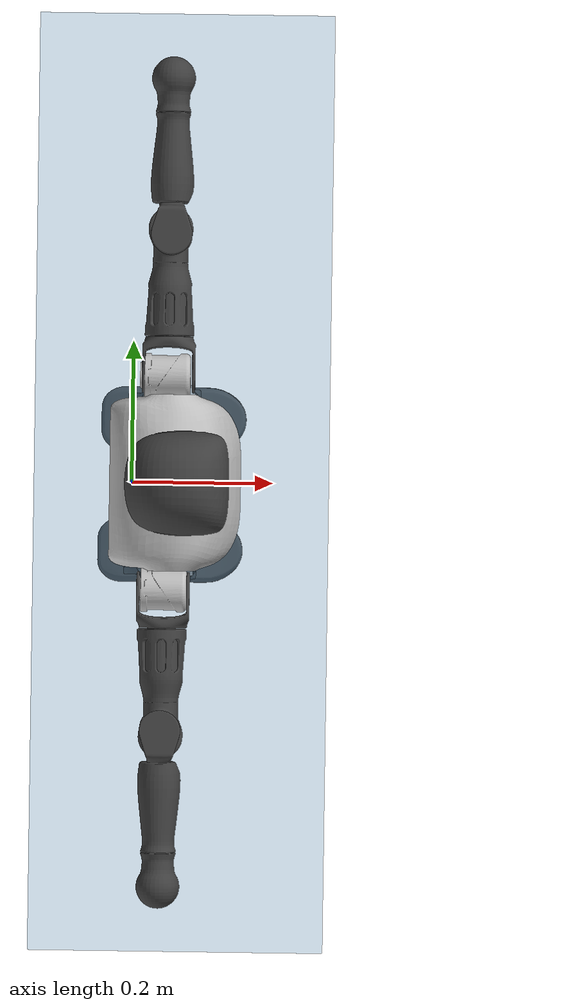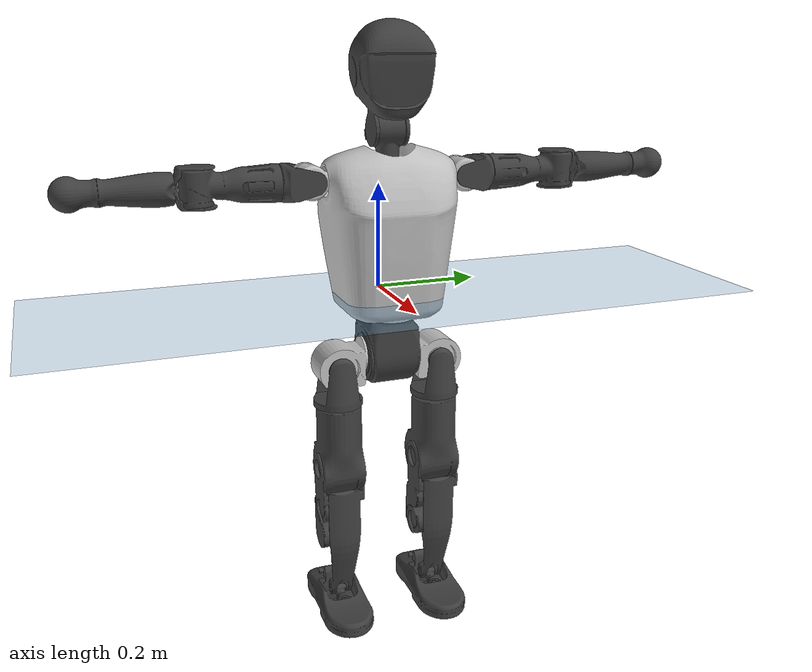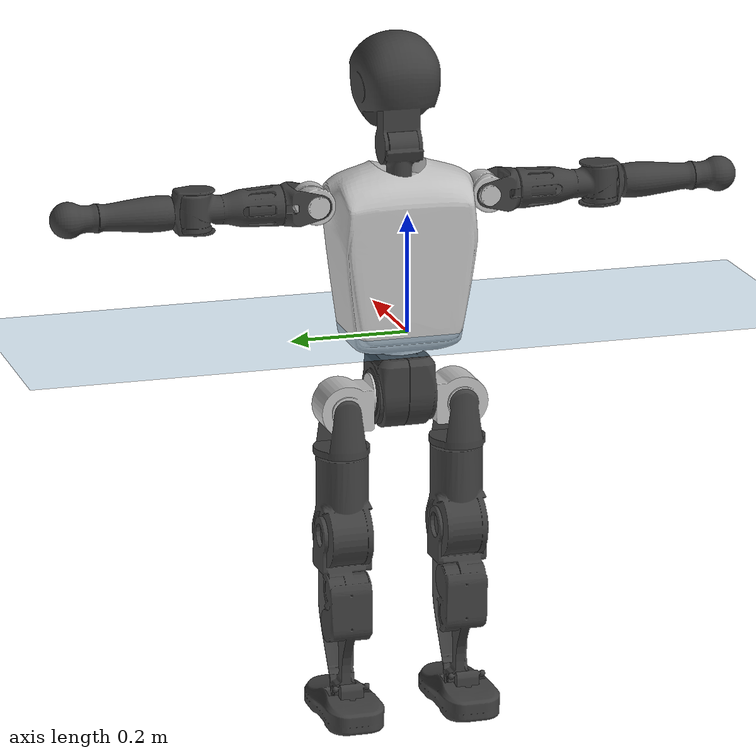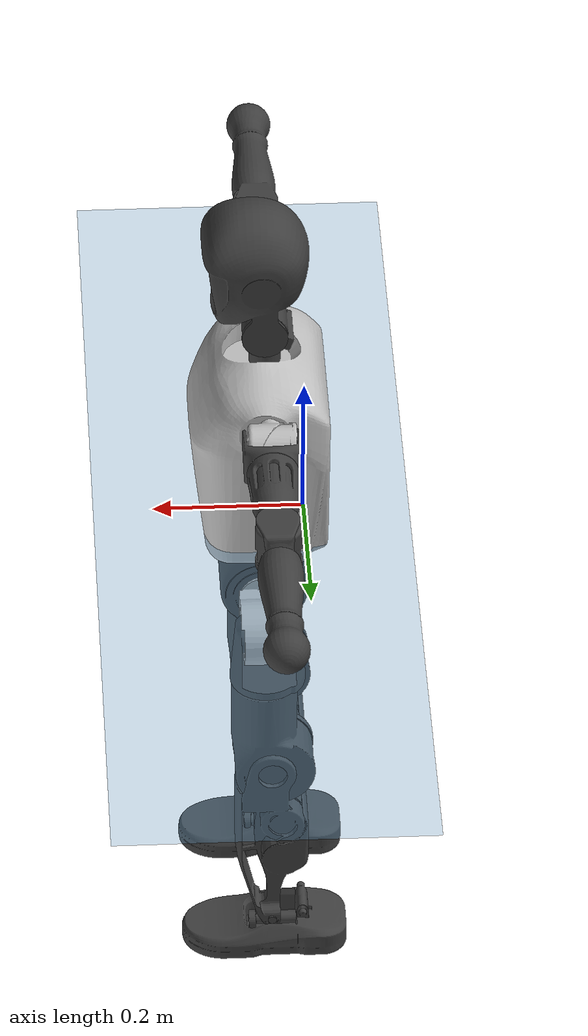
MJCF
<mujoco model="T1">
  <compiler angle="radian" assetdir="assets" balanceinertia="true" inertiafromgeom="false"/>

  <option timestep="0.005" density="1.2" viscosity="2e-05"/>

  <size nkey="1"/>

  <visual>
    <quality shadowsize="8192"/>
    <map shadowclip="0.5"/>
  </visual>

  <default>
    <default class="/">
      <joint armature="0.01" damping="0.01" frictionloss="0.1"/>
      <geom contype="0" conaffinity="0" group="1" solref="-1000 -80"/>
      <site size="0.01 0.005 0.005" group="5"/>
      <general forcelimited="true" biastype="affine" gainprm="25" biasprm="0 -25 -0.6"/>
      <default class="t1">
        <geom rgba="0.25 0.25 0.25 1"/>
        <default class="visual">
          <geom type="mesh" group="2"/>
        </default>
        <default class="collision">
          <geom group="3"/>
        </default>
        <default class="foot">
          <geom size="0.1115 0.05 0.015" type="box" condim="6" group="4" priority="1" solimp="0.015 1 0.015"/>
        </default>
        <default class="reward_collision_sphere">
          <geom group="5" rgba="1 0 0 1"/>
        </default>
      </default>
    </default>
  </default>

  <asset>
    <texture type="skybox" colorspace="auto" name="//unnamed_texture_0" builtin="gradient" rgb1="0.95 0.95 0.95" rgb2="0.95 0.95 0.95" width="100" height="600"/>
    <texture type="2d" colorspace="auto" name="texplane" builtin="checker" rgb1="0.345 0.575 0.748" rgb2="0.345 0.575 0.748" markrgb="1 1 1" width="512" height="512"/>
    <material name="MatPlane" class="/" texture="texplane" texuniform="true" texrepeat="2 2" specular="0.9"/>
    <mesh name="Trunk" class="/" file="Trunk.stl"/>
    <mesh name="H1" class="/" file="H1.stl"/>
    <mesh name="H2" class="/" file="H2.stl"/>
    <mesh name="AL1" class="/" file="AL1.stl"/>
    <mesh name="AL2" class="/" file="AL2.stl"/>
    <mesh name="AL3" class="/" file="AL3.stl"/>
    <mesh name="left_hand_link" class="/" file="left_hand_link.stl"/>
    <mesh name="AR1" class="/" file="AR1.stl"/>
    <mesh name="AR2" class="/" file="AR2.stl"/>
    <mesh name="AR3" class="/" file="AR3.stl"/>
    <mesh name="right_hand_link" class="/" file="right_hand_link.stl"/>
    <mesh name="Waist" class="/" file="Waist.stl"/>
    <mesh name="Hip_Pitch_Left" class="/" file="Hip_Pitch_Left.stl"/>
    <mesh name="Hip_Roll_Left" class="/" file="Hip_Roll_Left.stl"/>
    <mesh name="Hip_Yaw_Left" class="/" file="Hip_Yaw_Left.stl"/>
    <mesh name="Shank_Left" class="/" file="Shank_Left.stl"/>
    <mesh name="Ankle_Cross_Left" class="/" file="Ankle_Cross_Left.stl"/>
    <mesh name="left_foot_link" class="/" file="left_foot_link.stl"/>
    <mesh name="Hip_Pitch_Right" class="/" file="Hip_Pitch_Right.stl"/>
    <mesh name="Hip_Roll_Right" class="/" file="Hip_Roll_Right.stl"/>
    <mesh name="Hip_Yaw_Right" class="/" file="Hip_Yaw_Right.stl"/>
    <mesh name="Shank_Right" class="/" file="Shank_Right.stl"/>
    <mesh name="Ankle_Cross_Right" class="/" file="Ankle_Cross_Right.stl"/>
    <mesh name="right_foot_link" class="/" file="right_foot_link.stl"/>
  </asset>

  <worldbody>
    <geom name="floor" class="/" size="100 100 0.125" type="plane" group="0" material="MatPlane"/>
    <light name="toplight_shadow" class="/" pos="0 0 5" dir="0.0990148 0.0990148 -0.990148" type="directional" ambient="0.04 0.04 0.04" diffuse="0.55 0.55 0.55" specular="0.12 0.12 0.12"/>
    <light name="toplight_fill" class="/" pos="0 0 5" dir="0.0990148 0.0990148 -0.990148" type="directional" castshadow="false" ambient="0.04 0.04 0.04" diffuse="0.3 0.3 0.3" specular="0.08 0.08 0.08"/>
    <body name="trunk" childclass="t1" pos="-0.000223482 -0.000499017 -0.000648821" quat="1 0.000156446 5.19361e-05 -0.000279065">
      <inertial pos="0.0470586 -0.000739546 0.104701" quat="0.999961 -0.00020122 -0.00887612 -0.000301172" mass="9.61571" diaginertia="0.039633 0.0585209 0.056419"/>
      <joint name="//unnamed_joint_0" type="free" armature="0" damping="0" frictionloss="0"/>
      <geom name="//unnamed_geom_1" class="visual" rgba="0.76 0.76 0.76 1" mesh="Trunk"/>
      <geom name="//unnamed_geom_2" class="collision" size="0.069874 0.0931654 0.139748" pos="0.0507683 0 0.120231" type="box"/>
      <geom name="//unnamed_geom_3" class="reward_collision_sphere" size="0.10714" pos="0.0507683 0 0.100192"/>
      <geom name="//unnamed_geom_4" class="reward_collision_sphere" size="0.0139748" pos="0.0507683 0.0804864 0"/>
      <geom name="//unnamed_geom_5" class="reward_collision_sphere" size="0.0139748" pos="0.0507683 -0.0804864 0"/>
      <geom name="//unnamed_geom_6" class="reward_collision_sphere" size="0.0139748" pos="0.0507683 0.101318 0.180346"/>
      <geom name="//unnamed_geom_7" class="reward_collision_sphere" size="0.0139748" pos="0.0507683 -0.101318 0.180346"/>
      <site name="imu" pos="-0.005164 0.00593961 -0.00469992" size="0.00931654"/>
      <camera name="track" pos="0 -1.8938 0" quat="0.707107 0.707107 0 0" mode="trackcom"/>
      <camera name="ego_camera" pos="0.103229 0 0.420808" quat="-0.5 -0.5 0.5 0.5"/>
      <body name="H1" pos="0.0523959 -0.000510874 0.243775" quat="1 -0.000213078 -0.000367277 0.000204213">
        <inertial pos="-0.00102648 -0.00154519 0.0570486" quat="0.763281 -0.0148475 -9.26374e-05 0.645896" mass="0.367111" diaginertia="0.000105528 0.000170395 0.000152043"/>
        <joint name="AAHead_yaw" pos="0 0 0" axis="-0.00123596 -0.00423383 0.99999" stiffness="0.0024225" range="-1.56041 1.57639" armature="0.00982908" damping="0.00409065" frictionloss="0.0936757"/>
        <geom name="//unnamed_geom_8" class="visual" mesh="H1"/>
        <body name="H2" pos="0.000950825 0.000604168 0.0618567" quat="1 0.000196251 -0.000191117 -0.000430381">
          <inertial pos="0.00625837 0.00108508 0.0990184" quat="0.988393 0.108143 -0.0732902 -0.0775466" mass="0.511062" diaginertia="0.000881599 0.00147372 0.00172397"/>
          <joint name="Head_pitch" pos="0 0 0" axis="0.00132523 -0.999998 0.00140211" range="-1.23138 0.366967" armature="0.00882584" damping="0.00959566" frictionloss="0.0910469"/>
          <geom name="//unnamed_geom_9" class="visual" mesh="H2"/>
          <geom name="//unnamed_geom_10" class="collision" size="0.0745323" pos="0.00846138 0 0.110212"/>
          <geom name="//unnamed_geom_11" class="reward_collision_sphere" size="0.0838488" pos="0.0169228 0 0.100192"/>
        </body>
      </body>
      <body name="AL1" pos="0.0491386 0.100939 0.219031" quat="1 8.94623e-06 0.000401275 2.51354e-05">
        <inertial pos="-0.000798913 0.0423772 6.73676e-05" quat="0.502085 0.497074 -0.504528 0.496265" mass="0.428625" diaginertia="0.000587212 0.0009934 0.000298475"/>
        <joint name="Left_Shoulder_Pitch" pos="0 0 0" axis="0.00380656 0.999993 0.000277657" range="-3.32619 1.21589" armature="0.00947442" damping="0.00615465" frictionloss="0.0967954"/>
        <geom name="//unnamed_geom_12" class="visual" rgba="0.76 0.76 0.76 1" mesh="AL1"/>
        <body name="AL2" pos="0.00176627 0.0443419 7.1196e-05" quat="1 2.73422e-06 7.57463e-05 4.95994e-05">
          <inertial pos="0.00366559 0.0356503 0.000187027" quat="0.489068 0.511001 -0.487859 0.51155" mass="0.129104" diaginertia="0.000172185 0.000258713 0.000174806"/>
          <joint name="Left_Shoulder_Roll" pos="0 0 0" axis="-0.999995 0.00135631 -0.00280843" range="-1.55402 1.75894" armature="0.00888508" damping="0.00856086" frictionloss="0.0937082"/>
          <geom name="//unnamed_geom_13" class="visual" mesh="AL2"/>
          <body name="AL3" pos="0.000491825 0.0572315 -4.57533e-05" quat="1 0.000174552 9.42973e-05 7.68691e-05">
            <inertial pos="-0.000960653 0.0808524 -0.0003069" quat="0.703265 0.710926 0.000459547 -0.00176354" mass="0.824268" diaginertia="0.00564738 0.00970762 0.00061998"/>
            <joint name="Left_Elbow_Pitch" pos="0 0 0" axis="-0.000539303 -0.999976 -0.00692615" range="-2.25158 2.26728" armature="0.00859181" damping="0.00208996" frictionloss="0.0953602"/>
            <geom name="//unnamed_geom_14" class="visual" mesh="AL3"/>
            <geom name="//unnamed_geom_15" class="collision" size="0.0279496 0.069874" pos="0 0.0473449 0" quat="0.707105 0.707108 0 0" type="cylinder"/>
            <geom name="//unnamed_geom_16" class="reward_collision_sphere" size="0.0335395"/>
            <body name="left_hand_link" pos="0.00100154 0.139313 0.000189046" quat="1 0.000133684 0.0003936 -0.000247961">
              <inertial pos="0.000161609 0.104362 -0.000521335" quat="0.707739 0.706474 2.67995e-05 -0.000239258" mass="0.262072" diaginertia="0.00354667 0.00621964 0.000213356"/>
              <joint name="Left_Elbow_Yaw" pos="0 0 0" axis="-0.00716089 -0.00148613 0.999973" stiffness="0.00224329" range="-2.42596 -0.00114765" armature="0.00978463" damping="0.0121968" frictionloss="0.0973241"/>
              <geom name="//unnamed_geom_17" class="visual" mesh="left_hand_link"/>
              <geom name="//unnamed_geom_18" class="collision" size="0.0279496 0.0815197" pos="0 0.123097 0" quat="0.707105 0.707108 0 0" type="cylinder"/>
              <geom name="//unnamed_geom_19" class="reward_collision_sphere" size="0.0465827"/>
              <geom name="//unnamed_geom_20" class="reward_collision_sphere" size="0.0326079" pos="0 0.104159 0"/>
              <geom name="//unnamed_geom_21" class="reward_collision_sphere" size="0.0326079" pos="0 0.203583 0"/>
            </body>
          </body>
        </body>
      </body>
      <body name="AR1" pos="0.0479728 -0.100771 0.218877" quat="1 -0.000271271 0.00049335 0.000202892">
        <inertial pos="-0.00194148 -0.043289 -0.000534023" quat="0.50124 0.501107 -0.505491 0.492066" mass="0.42173" diaginertia="0.000597605 0.000992348 0.000298259"/>
        <joint name="Right_Shoulder_Pitch" pos="0 0 0" axis="0.000666197 -0.999998 0.00180892" stiffness="0.000121245" range="-1.22498 3.30653" armature="0.00923465" damping="0.00473713" frictionloss="0.0954833"/>
        <geom name="//unnamed_geom_22" class="visual" rgba="0.76 0.76 0.76 1" mesh="AR1"/>
        <body name="AR2" pos="-0.000614791 -0.0433362 0.000147654" quat="1 0.000259876 4.14783e-05 6.6053e-05">
          <inertial pos="0.002578 -0.0354185 -0.000535091" quat="0.511503 0.488108 -0.512139 0.487677" mass="0.129453" diaginertia="0.000174131 0.000264946 0.000176401"/>
          <joint name="Right_Shoulder_Roll" pos="0 0 0" axis="-0.999994 -0.0034508 -0.000760963" stiffness="0.00329415" range="-1.7587 1.59573" armature="0.00942718" damping="0.00417619" frictionloss="0.0955969"/>
          <geom name="//unnamed_geom_23" class="visual" mesh="AR2"/>
          <body name="AR3" pos="-0.000745619 -0.0579446 0.000275916" quat="1 -8.30491e-05 -2.80221e-05 -6.08754e-05">
            <inertial pos="-0.000392276 -0.0818301 0.000194829" quat="0.706644 0.707569 -0.000440099 0.000975627" mass="0.82849" diaginertia="0.0055287 0.00981326 0.00062737"/>
            <joint name="Right_Elbow_Pitch" pos="0 0 0" axis="0.00425024 0.999991 -0.000472332" range="-2.28834 2.2754" armature="0.00936809" damping="0.00783831" frictionloss="0.0931664"/>
            <geom name="//unnamed_geom_24" class="visual" mesh="AR3"/>
            <geom name="//unnamed_geom_25" class="collision" size="0.0279496 0.069874" pos="0 -0.0473449 0" quat="0.707105 0.707108 0 0" type="cylinder"/>
            <geom name="//unnamed_geom_26" class="reward_collision_sphere" size="0.0335395"/>
            <body name="right_hand_link" pos="-0.000956216 -0.139307 -0.000738304" quat="1 4.13303e-05 -0.000222089 0.000292584">
              <inertial pos="4.85634e-05 -0.104104 0.00122833" quat="0.706633 0.707579 -0.000552175 0.000845791" mass="0.266588" diaginertia="0.00354545 0.00619232 0.000218485"/>
              <joint name="Right_Elbow_Yaw" pos="0 0 0" axis="0.00174968 0.00357883 0.999992" range="0.00956949 2.43397" armature="0.0094385" damping="0.0116478" frictionloss="0.0902214"/>
              <geom name="//unnamed_geom_27" class="visual" mesh="right_hand_link"/>
              <geom name="//unnamed_geom_28" class="collision" size="0.0279496 0.0815197" pos="0 -0.123097 0" quat="0.707105 0.707108 0 0" type="cylinder"/>
              <geom name="//unnamed_geom_29" class="reward_collision_sphere" size="0.0465827"/>
              <geom name="//unnamed_geom_30" class="reward_collision_sphere" size="0.0326079" pos="0 -0.104159 0"/>
              <geom name="//unnamed_geom_31" class="reward_collision_sphere" size="0.0326079" pos="0 -0.203583 0"/>
            </body>
          </body>
        </body>
      </body>
      <body name="Waist" pos="0.0535436 -0.00189031 -0.115578" quat="1 -4.11672e-05 -9.50299e-05 4.4248e-05">
        <inertial pos="0.000159781 -0.00118023 0.0073674" quat="0.983807 0.000519274 -0.179226 0.00150772" mass="2.10631" diaginertia="0.0023032 0.00405749 0.00476089"/>
        <joint name="Waist" pos="0 0 0" axis="0.00381234 0.00444822 0.999983" range="-1.58019 1.57808" armature="0.00975793" damping="0.0180572" frictionloss="0.0930777"/>
        <geom name="//unnamed_geom_32" class="visual" mesh="Waist"/>
        <body name="Hip_Pitch_Left" pos="-0.000420092 0.100138 -0.00059875" quat="0.999999 -0.000854032 9.82162e-05 -0.000662226">
          <inertial pos="0.00120427 -0.00617535 -0.0180294" quat="0.974946 0.22203 0.0133572 0.00206964" mass="0.803407" diaginertia="0.00077158 0.00109287 0.00126316"/>
          <joint name="Left_Hip_Pitch" pos="0 0 0" axis="-0.000913568 0.999993 0.00361504" stiffness="0.00139931" range="-1.79751 1.56522" armature="0.00941094" damping="0.0077542" frictionloss="0.0989683"/>
          <geom name="//unnamed_geom_33" class="visual" rgba="0.76 0.76 0.76 1" mesh="Hip_Pitch_Left"/>
          <body name="Hip_Roll_Left" pos="0.00163248 0.000917152 -0.0219614" quat="1 7.33973e-05 0.000520945 -0.000416176">
            <inertial pos="0.000563026 0.00105403 -0.0548028" quat="0.707715 -0.00488949 -0.00552067 0.706459" mass="0.313794" diaginertia="0.00075055 0.00115423 0.000519609"/>
            <joint name="Left_Hip_Roll" pos="0 0 0" axis="-0.999999 -0.00102428 0.000501175" range="-1.56669 0.196052" armature="0.00909042" damping="0.0108713" frictionloss="0.0929194"/>
            <geom name="//unnamed_geom_34" class="visual" mesh="Hip_Roll_Left"/>
            <geom name="//unnamed_geom_35" class="reward_collision_sphere" size="0.051241"/>
            <body name="Hip_Yaw_Left" pos="0.00213097 -0.00147722 -0.0833935" quat="1 4.95603e-05 -6.58419e-06 4.28945e-05">
              <inertial pos="-0.00626664 0.00112013 -0.0886332" quat="0.697122 -0.0334958 -0.0309819 0.715499" mass="1.73292" diaginertia="0.0110365 0.0190456 0.00260317"/>
              <joint name="Left_Hip_Yaw" pos="0 0 0" axis="-3.74058e-05 0.00241114 -0.999997" range="-1.00433 1.01237" armature="0.00934227" damping="0.0141682" frictionloss="0.0899694"/>
              <geom name="//unnamed_geom_36" class="visual" mesh="Hip_Yaw_Left"/>
              <geom name="//unnamed_geom_37" class="collision" size="0.0465827 0.0745323" type="cylinder"/>
              <body name="Shank_Left" pos="-0.00995605 0.000540943 -0.133815" quat="1 8.19761e-05 5.39067e-05 -8.46315e-05">
                <inertial pos="-0.00489256 0.00141379 -0.125446" quat="0.997412 0.00332802 -0.0230477 0.0680239" mass="1.38717" diaginertia="0.0150257 0.0259015 0.00186898"/>
                <joint name="Left_Knee_Pitch" pos="0 0 0" axis="-0.00142559 0.999997 0.00199024" range="0.00213667 2.33327" armature="0.00918932" damping="0.0127494" frictionloss="0.093543"/>
                <geom name="//unnamed_geom_38" class="visual" mesh="Shank_Left"/>
                <geom name="//unnamed_geom_39" class="collision" size="0.0465827 0.069874" pos="0 0 -0.120231" type="cylinder"/>
                <geom name="//unnamed_geom_40" class="reward_collision_sphere" size="0.0605575"/>
                <body name="Ankle_Cross_Left" pos="-0.00108161 0.00010276 -0.280943" quat="1 0.000370408 -8.40064e-05 -0.00018596">
                  <inertial pos="-0.00335031 -8.25335e-05 -0.00840949" quat="0.442042 0.55164 0.551042 0.443448" mass="0.0596874" diaginertia="1.25657e-05 1.95497e-05 1.14426e-05"/>
                  <joint name="Left_Ankle_Pitch" pos="0 0 0" axis="0.000193903 1 0.000537555" range="-0.894865 0.370486" armature="0.00891391" damping="9.14965e-05" frictionloss="0.0892184"/>
                  <geom name="//unnamed_geom_41" class="visual" mesh="Ankle_Cross_Left"/>
                  <body name="left_foot_link" pos="0.000229438 0.000785569 -0.0129039" quat="1 -0.000268504 0.000462768 0.000386754">
                    <inertial pos="5.7501e-05 0.00017779 -0.00892497" quat="4.84115e-05 0.620664 0.000489019 0.784076" mass="0.567697" diaginertia="0.00120965 0.0018481 0.00230073"/>
                    <joint name="Left_Ankle_Roll" pos="0 0 0" axis="-0.999996 -0.0016469 -0.00247548" range="-0.443242 0.466157" armature="0.00940058" damping="0.00855429" frictionloss="0.101366"/>
                    <geom name="//unnamed_geom_42" class="visual" mesh="left_foot_link"/>
                    <geom name="left_foot" class="foot" size="0.103907 0.0454608 0.0151674" pos="0.00846138 0 -0.0150289"/>
                    <geom name="//unnamed_geom_44" class="reward_collision_sphere" size="0.048446" pos="0.00846138 0 -0.0150289"/>
                    <geom name="//unnamed_geom_45" class="reward_collision_sphere" size="0.0279496" pos="0.0803831 -0.0217787 -0.0150289"/>
                    <geom name="//unnamed_geom_46" class="reward_collision_sphere" size="0.0279496" pos="-0.0592297 -0.0217787 -0.0150289"/>
                    <site name="left_foot" class="foot" pos="0.00846138 0 -0.0150289" size="0.00931654"/>
                  </body>
                </body>
              </body>
            </body>
          </body>
        </body>
        <body name="Hip_Pitch_Right" pos="-0.000284685 -0.100499 0.000156599" quat="1 -9.32847e-05 2.71884e-05 -0.000120139">
          <inertial pos="0.00113532 0.0072476 -0.0170097" quat="0.972198 -0.233791 0.0117201 -0.0059839" mass="0.818626" diaginertia="0.00076966 0.00108039 0.00124709"/>
          <joint name="Right_Hip_Pitch" pos="0 0 0" axis="-0.000999358 -0.999999 -0.000872842" range="-1.57443 1.81765" armature="0.00910913" damping="0.00696396" frictionloss="0.0939131"/>
          <geom name="//unnamed_geom_47" class="visual" rgba="0.76 0.76 0.76 1" mesh="Hip_Pitch_Right"/>
          <body name="Hip_Roll_Right" pos="-0.000440059 -0.00034616 -0.0207905" quat="1 -3.20477e-08 6.22882e-07 -2.21438e-07">
            <inertial pos="0.00106683 -0.00114405 -0.053846" quat="0.707433 -0.00540664 -0.00722923 0.706723" mass="0.312191" diaginertia="0.000754578 0.00115445 0.000517701"/>
            <joint name="Right_Hip_Roll" pos="0 0 0" axis="-0.999999 -0.000544822 0.0013614" range="-0.211254 1.56515" armature="0.009772" damping="0.00598231" frictionloss="0.0941628"/>
            <geom name="//unnamed_geom_48" class="visual" mesh="Hip_Roll_Right"/>
            <geom name="//unnamed_geom_49" class="reward_collision_sphere" size="0.051241"/>
            <body name="Hip_Yaw_Right" pos="-0.000105576 0.00149182 -0.0823816" quat="1 -1.02779e-05 -4.90163e-06 2.41002e-06">
              <inertial pos="-0.00532174 -0.000173063 -0.0909278" quat="0.714341 -0.0316205 -0.0336379 0.698273" mass="1.76943" diaginertia="0.0111843 0.0194801 0.00264626"/>
              <joint name="Right_Hip_Yaw" pos="0 0 0" axis="-0.00336145 0.00286719 -0.99999" range="-0.995556 1.02156" armature="0.00938027" damping="0.0128143" frictionloss="0.0928847"/>
              <geom name="//unnamed_geom_50" class="visual" mesh="Hip_Yaw_Right"/>
              <geom name="//unnamed_geom_51" class="collision" size="0.0465827 0.0745323" type="cylinder"/>
              <body name="Shank_Right" pos="-0.0122653 -0.000581077 -0.135001" quat="1 8.88047e-05 6.54669e-06 1.91927e-05">
                <inertial pos="-0.00361086 -0.000284314 -0.121958" quat="0.999288 -0.00106593 -0.0233377 -0.029633" mass="1.45353" diaginertia="0.0152267 0.0266928 0.00198315"/>
                <joint name="Right_Knee_Pitch" pos="0 0 0" axis="0.00650831 -0.999957 -0.00656154" range="-2.33584 0.00686736" armature="0.0089696" damping="0.00503198" frictionloss="0.0926365"/>
                <geom name="//unnamed_geom_52" class="visual" mesh="Shank_Right"/>
                <geom name="//unnamed_geom_53" class="collision" size="0.0465827 0.069874" pos="0 0 -0.120231" type="cylinder"/>
                <geom name="//unnamed_geom_54" class="reward_collision_sphere" size="0.0605575"/>
                <body name="Ankle_Cross_Right" pos="0.00148763 -0.00203933 -0.28105" quat="1 0.00031257 -0.000352967 -0.000358781">
                  <inertial pos="-0.00337693 5.49917e-05 -0.00852453" quat="0.444039 0.55096 0.551195 0.442105" mass="0.0587839" diaginertia="1.24715e-05 1.9509e-05 1.15357e-05"/>
                  <joint name="Right_Ankle_Pitch" pos="0 0 0" axis="-0.00222631 -0.999997 0.00141448" range="-0.330752 0.894206" armature="0.00932973" damping="0.00718038" frictionloss="0.0935421"/>
                  <geom name="//unnamed_geom_55" class="visual" mesh="Ankle_Cross_Right"/>
                  <body name="right_foot_link" pos="2.67985e-05 -0.000878146 -0.0114484" quat="1 5.16652e-07 1.62354e-06 8.95336e-07">
                    <inertial pos="0.000153971 -0.000494445 -0.00916554" quat="-0.000249239 0.620703 -0.00183653 0.784044" mass="0.553739" diaginertia="0.00115302 0.00182722 0.00222256"/>
                    <joint name="Right_Ankle_Roll" pos="0 0 0" axis="-0.999999 -0.001029 -0.000236592" range="-0.457184 0.458619" armature="0.00912045" damping="0.00934905" frictionloss="0.0940374"/>
                    <geom name="//unnamed_geom_56" class="visual" mesh="right_foot_link"/>
                    <geom name="right_foot" class="foot" size="0.0991508 0.0448246 0.0139639" pos="0.00846138 0 -0.0150289"/>
                    <geom name="//unnamed_geom_58" class="reward_collision_sphere" size="0.0372661"/>
                    <geom name="//unnamed_geom_59" class="reward_collision_sphere" size="0.0279496" pos="0.00846138 0 -0.0150289"/>
                    <geom name="//unnamed_geom_60" class="reward_collision_sphere" size="0.0279496" pos="0.0803831 0.0217787 -0.0150289"/>
                    <geom name="//unnamed_geom_61" class="reward_collision_sphere" size="0.0279496" pos="-0.0592297 0.0217787 -0.0150289"/>
                    <site name="right_foot" class="foot" pos="0.00846138 0 -0.0150289" size="0.00931654"/>
                  </body>
                </body>
              </body>
            </body>
          </body>
        </body>
      </body>
    </body>
  </worldbody>

  <contact>
    <pair class="/" geom1="floor" geom2="left_foot" name="//unnamed_contact_0"/>
    <pair class="/" geom1="floor" geom2="right_foot" name="//unnamed_contact_1"/>
  </contact>

  <actuator>
    <general name="AAHead_yaw" class="/" joint="AAHead_yaw" forcerange="-6.60945 6.60945" gainprm="22.5517" biasprm="0 -22.5517 -0.5617"/>
    <general name="Head_pitch" class="/" joint="Head_pitch" forcerange="-6.53966 6.53966" gainprm="22.5517" biasprm="0 -22.5517 -0.5617"/>
    <general name="Left_Shoulder_Pitch" class="/" joint="Left_Shoulder_Pitch" forcerange="-16.9274 16.9274" gainprm="22.5517" biasprm="0 -22.5517 -0.5617"/>
    <general name="Left_Shoulder_Roll" class="/" joint="Left_Shoulder_Roll" forcerange="-17.2664 17.2664" gainprm="22.5517" biasprm="0 -22.5517 -0.5617"/>
    <general name="Left_Elbow_Pitch" class="/" joint="Left_Elbow_Pitch" forcerange="-16.0384 16.0384" gainprm="22.5517" biasprm="0 -22.5517 -0.5617"/>
    <general name="Left_Elbow_Yaw" class="/" joint="Left_Elbow_Yaw" forcerange="-17.297 17.297" gainprm="22.5517" biasprm="0 -22.5517 -0.5617"/>
    <general name="Right_Shoulder_Pitch" class="/" joint="Right_Shoulder_Pitch" forcerange="-17.4397 17.4397" gainprm="22.5517" biasprm="0 -22.5517 -0.5617"/>
    <general name="Right_Shoulder_Roll" class="/" joint="Right_Shoulder_Roll" forcerange="-17.3023 17.3023" gainprm="22.5517" biasprm="0 -22.5517 -0.5617"/>
    <general name="Right_Elbow_Pitch" class="/" joint="Right_Elbow_Pitch" forcerange="-16.8384 16.8384" gainprm="22.5517" biasprm="0 -22.5517 -0.5617"/>
    <general name="Right_Elbow_Yaw" class="/" joint="Right_Elbow_Yaw" forcerange="-16.7767 16.7767" gainprm="22.5517" biasprm="0 -22.5517 -0.5617"/>
    <general name="Waist" class="/" joint="Waist" forcerange="-28.3593 28.3593" gainprm="22.5517" biasprm="0 -22.5517 -0.5617"/>
    <general name="Left_Hip_Pitch" class="/" joint="Left_Hip_Pitch" forcerange="-43.0768 43.0768" gainprm="22.5517" biasprm="0 -22.5517 -0.5617"/>
    <general name="Left_Hip_Roll" class="/" joint="Left_Hip_Roll" forcerange="-28.808 28.808" gainprm="22.5517" biasprm="0 -22.5517 -0.5617"/>
    <general name="Left_Hip_Yaw" class="/" joint="Left_Hip_Yaw" forcerange="-26.6561 26.6561" gainprm="22.5517" biasprm="0 -22.5517 -0.5617"/>
    <general name="Left_Knee_Pitch" class="/" joint="Left_Knee_Pitch" forcerange="-52.8393 52.8393" gainprm="22.5517" biasprm="0 -22.5517 -0.5617"/>
    <general name="Left_Ankle_Pitch" class="/" joint="Left_Ankle_Pitch" forcerange="-18.6962 18.6962" gainprm="22.5517" biasprm="0 -22.5517 -0.5617"/>
    <general name="Left_Ankle_Roll" class="/" joint="Left_Ankle_Roll" forcerange="-13.9351 13.9351" gainprm="22.5517" biasprm="0 -22.5517 -0.5617"/>
    <general name="Right_Hip_Pitch" class="/" joint="Right_Hip_Pitch" forcerange="-41.316 41.316" gainprm="22.5517" biasprm="0 -22.5517 -0.5617"/>
    <general name="Right_Hip_Roll" class="/" joint="Right_Hip_Roll" forcerange="-27.7541 27.7541" gainprm="22.5517" biasprm="0 -22.5517 -0.5617"/>
    <general name="Right_Hip_Yaw" class="/" joint="Right_Hip_Yaw" forcerange="-26.9973 26.9973" gainprm="22.5517" biasprm="0 -22.5517 -0.5617"/>
    <general name="Right_Knee_Pitch" class="/" joint="Right_Knee_Pitch" forcerange="-56.1665 56.1665" gainprm="22.5517" biasprm="0 -22.5517 -0.5617"/>
    <general name="Right_Ankle_Pitch" class="/" joint="Right_Ankle_Pitch" forcerange="-18.3985 18.3985" gainprm="22.5517" biasprm="0 -22.5517 -0.5617"/>
    <general name="Right_Ankle_Roll" class="/" joint="Right_Ankle_Roll" forcerange="-13.9749 13.9749" gainprm="22.5517" biasprm="0 -22.5517 -0.5617"/>
  </actuator>

  <sensor>
    <gyro site="imu" name="imu_angular_velocity"/>
    <velocimeter site="imu" name="imu_linear_velocity"/>
    <framelinvel objtype="site" objname="left_foot" name="left_foot_global_linear_velocity"/>
    <framelinvel objtype="site" objname="right_foot" name="right_foot_global_linear_velocity"/>
  </sensor>

  <keyframe>
    <key name="home" qpos="0 0 0.6385 1 0 0 0 0 0 0 1.4 0 -0.4 0 -1.4 0 0.4 0 -0.4 0 0 0.8 -0.4 0 0.4 0 0 -0.8 0.4 0"/>
  </keyframe>
</mujoco>
